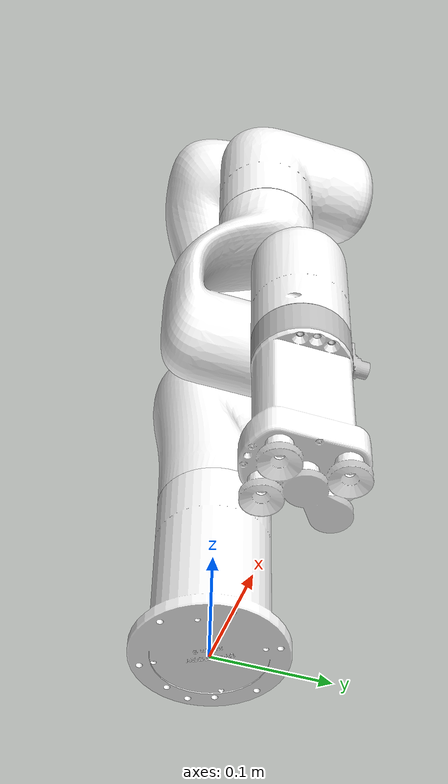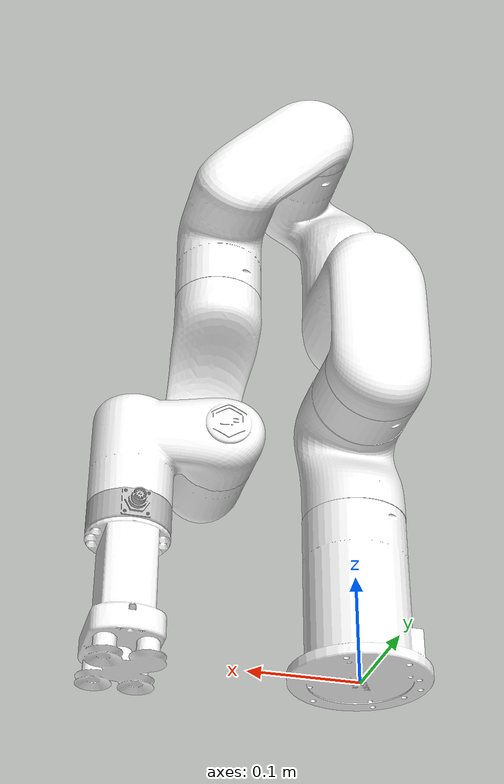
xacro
<?xml version='1.0' encoding='utf-8'?>
<robot xmlns:xacro="http://ros.org/wiki/xacro" name="xarm6">
  <xacro:arg name="prefix" default=""/>
  <xacro:arg name="ros_namespace" default="xarm"/>
  <xacro:arg name="limited" default="false"/>
  <xacro:arg name="effort_control" default="false"/>
  <xacro:arg name="velocity_control" default="false"/>
  <!-- To add realsense d435i and vacuum gripper, set 'add_realsense_d435i' = true -->
  <xacro:arg name="add_realsense_d435i" default="false"/>
  <xacro:arg name="model1300" default="false"/>

  <!-- load xarm6 robot -->
  <xacro:include filename="$(find xarm_description)/urdf/xarm6_robot_macro.xacro" />

  <!-- Attach gripper -->
  <xacro:include filename="$(find xarm_description)/urdf/xarm_vacuum_gripper.urdf.xacro" />

  <xacro:xarm6_robot prefix="$(arg prefix)" namespace="$(arg ros_namespace)" limited="$(arg limited)" effort_control="$(arg effort_control)" velocity_control="$(arg velocity_control)" rs_d435i="$(arg add_realsense_d435i)" model1300="$(arg model1300)" />

  <xacro:if value="$(arg add_realsense_d435i)">
    <xacro:xarm_vacuum_gripper_urdf attach_to="$(arg prefix)link_eef" xyz="0 0 0.003" effort_control="$(arg effort_control)" velocity_control="$(arg velocity_control)" />
  </xacro:if>
  <xacro:unless value="$(arg add_realsense_d435i)">
    <xacro:xarm_vacuum_gripper_urdf attach_to="$(arg prefix)link_eef" effort_control="$(arg effort_control)" velocity_control="$(arg velocity_control)" />
  </xacro:unless>
</robot>

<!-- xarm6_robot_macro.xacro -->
<robot xmlns:xacro="http://ros.org/wiki/xacro" name="xarm6" >
  <xacro:macro name="xarm6_robot" params="prefix:='' namespace:='xarm' limited:='false' effort_control:='false'
    velocity_control:='false' attach_to:='world' xyz:='0 0 0' rpy:='0 0 0' load_gazebo_plugin:='true' rs_d435i:='false'
    model1300:='false'
    add_other_geometry:='false'
    geometry_type:='box' geometry_mass:='0.1'
    geometry_radius:='0.1' geometry_height:='0.1'
    geometry_length:='0.1' geometry_width:='0.1'
    geometry_mesh_filename:=''
    geometry_mesh_origin_xyz:='0 0 0'
    geometry_mesh_origin_rpy:='0 0 0'
    geometry_mesh_tcp_xyz:='0 0 0'
    geometry_mesh_tcp_rpy:='0 0 0' ">

    <!-- include xarm6 relative macros: -->
    <xacro:include filename="$(find xarm_description)/urdf/xarm6.urdf.xacro" />
    <xacro:include filename="$(find xarm_description)/urdf/xarm6.transmission.xacro" />
    <xacro:include filename="$(find xarm_description)/urdf/xarm6.gazebo.xacro" />

    <!-- gazebo_plugin -->
    <xacro:if value="${load_gazebo_plugin}">
    <xacro:include filename="$(find xarm_description)/urdf/common.gazebo.xacro" />
    <xacro:gazebo_ros_control_plugin namespace="${namespace}"/>
    </xacro:if>

    <!-- add one world link if no 'attach_to' specified  -->
    <xacro:if value="${attach_to == 'world'}">
      <link name="world" />
    </xacro:if>

    <joint name="${prefix}world_joint" type="fixed">
      <parent link="${attach_to}" />
      <child link = "${prefix}link_base" />
      <origin xyz="${xyz}" rpy="${rpy}" />
    </joint>

    <xacro:if value="${limited}">
      <xacro:xarm6_urdf prefix="${prefix}"
        joint1_lower_limit="${-pi*0.99}" joint1_upper_limit="${pi*0.99}"
        joint2_lower_limit="${-2.059}" joint2_upper_limit="${2.0944}"
        joint3_lower_limit="${-pi*0.99}" joint3_upper_limit="${0.19198}"
        joint4_lower_limit="${-pi*0.99}" joint4_upper_limit="${pi*0.99}"
        joint5_lower_limit="${-1.69297}" joint5_upper_limit="${pi*0.99}"
        joint6_lower_limit="${-pi*0.99}" joint6_upper_limit="${pi*0.99}"
        rs_d435i="${rs_d435i}" model1300="${model1300}"/>
    </xacro:if>
    <xacro:unless value="${limited}">
      <xacro:xarm6_urdf prefix="${prefix}" rs_d435i="${rs_d435i}" model1300="${model1300}"/>
    </xacro:unless>

    <xacro:xarm6_transmission prefix="${prefix}" hard_interface="$(eval 'EffortJointInterface' if ${effort_control} else 'VelocityJointInterface' if ${velocity_control} else 'PositionJointInterface')" />

    <xacro:xarm6_gazebo prefix="${prefix}" />

    <xacro:if value="${add_other_geometry}">
      <xacro:include filename="$(find xarm_description)/urdf/other_geometry.urdf.xacro" />
      <xacro:other_geometry prefix="${prefix}" attach_to="${prefix}link_eef"
        geometry_type="${geometry_type}" geometry_mass="${geometry_mass}"
        geometry_height="${geometry_height}" geometry_radius="${geometry_radius}"
        geometry_length="${geometry_length}" geometry_width="${geometry_width}"
        geometry_mesh_filename="${geometry_mesh_filename}"
        geometry_mesh_origin_xyz="${geometry_mesh_origin_xyz}" geometry_mesh_origin_rpy="${geometry_mesh_origin_rpy}"
        geometry_mesh_tcp_xyz="${geometry_mesh_tcp_xyz}" geometry_mesh_tcp_rpy="${geometry_mesh_tcp_rpy}"
      />
    </xacro:if>

  </xacro:macro>

</robot>

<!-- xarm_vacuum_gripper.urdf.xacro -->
<robot xmlns:xacro="http://ros.org/wiki/xacro" name="xarm_vacuum_gripper">
  <xacro:macro name="xarm_vacuum_gripper_urdf" params="prefix:='' attach_to:='' rpy:='0 0 0' xyz:='0 0 0' ">
  <xacro:unless value="${attach_to == ''}">
    <joint name="${prefix}vacuum_gripper_fix" type="fixed">
      <parent link="${attach_to}"/>
      <child link="${prefix}xarm_vacuum_gripper_link"/>
      <origin xyz="${xyz}" rpy="${rpy}"/>
    </joint>
  </xacro:unless>
  <link
    name="${prefix}xarm_vacuum_gripper_link">
    <inertial>
      <origin
        xyz="0.0 0.0 0.055"
        rpy="0 0 0" />
      <mass
        value="0.656" />
      <inertia
        ixx="0.00047106"
        ixy="3.9292E-07"
        ixz="2.6537E-06"
        iyy="0.00033072"
        iyz="-1.0975E-05"
        izz="0.00025642" />
    </inertial>
    <visual>
      <origin
        xyz="0 0 0"
        rpy="0 0 0" />
      <geometry>
        <mesh
          filename="package://xarm_description/meshes/vacuum_gripper/visual/vacuum_gripper.STL" />
      </geometry>
      <material name="White">
        <color rgba="1.0 1.0 1.0 1.0"/>
      </material>
    </visual>
    <collision>
      <origin
        xyz="0 0 0"
        rpy="0 0 0" />
      <geometry>
        <mesh
          filename="package://xarm_description/meshes/vacuum_gripper/collision/vacuum_gripper.STL" />
      </geometry>
    </collision>
  </link>

  <link name="${prefix}link_tcp" />

  <joint
    name="${prefix}joint_tcp"
    type="fixed">
    <origin
      xyz="0 0 0.126"
      rpy="0 0 0" />
    <parent
      link="${prefix}xarm_vacuum_gripper_link" />
    <child
      link="${prefix}link_tcp" />
  </joint>

  </xacro:macro>

</robot>

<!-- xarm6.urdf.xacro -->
<robot xmlns:xacro="http://ros.org/wiki/xacro">

  <xacro:macro name="xarm6_urdf" params="prefix
    joint1_lower_limit:=${-2.0*pi}  joint1_upper_limit:=${2.0*pi}
    joint2_lower_limit:=${-2.059}  joint2_upper_limit:=${2.0944}
    joint3_lower_limit:=${-3.927}  joint3_upper_limit:=${0.19198}
    joint4_lower_limit:=${-2.0*pi}  joint4_upper_limit:=${2.0*pi}
    joint5_lower_limit:=${-1.69297}  joint5_upper_limit:=${pi}
    joint6_lower_limit:=${-2.0*pi}  joint6_upper_limit:=${2.0*pi}
    rs_d435i:=false  model1300:=false">

    <material name="${prefix}Black">
      <color rgba="0.0 0.0 0.0 1.0"/>
    </material>

    <material name="${prefix}Red">
      <color rgba="0.8 0.0 0.0 1.0"/>
    </material>

    <material name="${prefix}White">
      <color rgba="1.0 1.0 1.0 1.0"/>
    </material>

    <material name="${prefix}Silver">
      <color rgba="0.753 0.753 0.753 1.0"/>
    </material>

    <link name="${prefix}link_base">
      <visual>
        <geometry>
          <mesh filename="package://xarm_description/meshes/xarm6/visual/base.stl"/>
        </geometry>
        <origin xyz="0 0 0" rpy="0 0 0"/>
        <material name="${prefix}White" />
      </visual>
      <collision>
        <geometry>
          <mesh filename="package://xarm_description/meshes/xarm6/visual/base.stl"/>
        </geometry>
        <origin xyz="0 0 0" rpy="0 0 0"/>
      </collision>
      <inertial>
      <origin xyz="0.0 0.0 0.09103" rpy="0 0 0" />
      <mass value="2.7" />
      <inertia
        ixx="0.00494875"
        ixy="-3.5E-06"
        ixz="1.25E-05"
        iyy="0.00494174"
        iyz="1.67E-06"
        izz="0.002219" />
      </inertial>
    </link>

    <link name="${prefix}link1">
      <visual>
        <geometry>
          <mesh filename="package://xarm_description/meshes/xarm6/visual/link1.stl"/>
        </geometry>
        <origin xyz="0 0 0" rpy="0 0 0"/>
        <material name="${prefix}White" />
      </visual>
      <collision>
        <geometry>
          <mesh filename="package://xarm_description/meshes/xarm6/visual/link1.stl"/>
        </geometry>
        <origin xyz="0 0 0" rpy="0 0 0"/>
      </collision>
      <inertial>
        <origin xyz="-0.002 0.02692 -0.01332" rpy="0 0 0"/>
        <mass value="2.16"/>
        <inertia
          ixx="0.00539427"
          ixy="1.095E-05"
          ixz="1.635E-06"
          iyy="0.0048979"
          iyz="0.000793"
          izz="0.00311573"/>
      </inertial>
    </link>

    <joint name="${prefix}joint1" type="revolute">
      <parent link="${prefix}link_base"/>
      <child  link="${prefix}link1"/>
      <origin xyz="0 0 0.267" rpy="0 0 0"/>
      <axis   xyz="0 0 1"/>
      <limit
        lower="${joint1_lower_limit}"
        upper="${joint1_upper_limit}"
        effort="50.0"
        velocity="3.14"/>
      <dynamics damping="1.0" friction="1.0"/>
    </joint>

    <link name="${prefix}link2">
      <visual>
        <geometry>
          <mesh filename="package://xarm_description/meshes/xarm6/visual/link2.stl"/>
        </geometry>
        <origin xyz="0 0 0" rpy="0 0 0"/>
        <material name="${prefix}White" />
      </visual>
      <collision>
        <geometry>
          <mesh filename="package://xarm_description/meshes/xarm6/visual/link2.stl"/>
        </geometry>
        <origin xyz="0 0 0" rpy="0 0 0"/>
      </collision>
      <inertial>
      <origin
        xyz="0.03531 -0.21398 0.03386"
        rpy="0 0 0" />
      <mass
        value="1.71" />
      <inertia
        ixx="0.0248674"
        ixy="-0.00430651"
        ixz="-0.00067797"
        iyy="0.00485548"
        iyz="0.00457245"
        izz="0.02387827" />
    </inertial>
    </link>

    <joint name="${prefix}joint2" type="revolute">
      <parent link="${prefix}link1"/>
      <child link="${prefix}link2"/>
      <origin xyz="0 0 0" rpy="-1.5708 0 0" />
      <axis xyz="0 0 1"/>
      <limit
        lower="${joint2_lower_limit}"
        upper="${joint2_upper_limit}"
        effort="50.0"
        velocity="3.14"/>
      <dynamics damping="1.0" friction="1.0"/>
    </joint>

    <link name="${prefix}link3">
      <visual>
        <geometry>
          <mesh filename="package://xarm_description/meshes/xarm6/visual/link3.stl"/>
        </geometry>
        <origin xyz="0 0 0" rpy="0 0 0"/>
        <material name="${prefix}White" />
      </visual>
      <collision>
        <geometry>
          <mesh filename="package://xarm_description/meshes/xarm6/visual/link3.stl"/>
        </geometry>
        <origin xyz="0 0 0" rpy="0 0 0"/>
      </collision>
      <inertial>
      <origin
        xyz="0.06781 0.10749 0.01457"
        rpy="0 0 0" />
      <mass
        value="1.384" />
      <inertia
        ixx="0.0053694"
        ixy="0.0014185"
        ixz="-0.00092094"
        iyy="0.0032423"
        iyz="-0.00169178"
        izz="0.00501731" />
    </inertial>
    </link>

    <joint name="${prefix}joint3" type="revolute">
      <parent link="${prefix}link2"/>
      <child link="${prefix}link3"/>
      <origin xyz="0.0535 -0.2845 0" rpy="0 0 0"/>
      <axis xyz="0 0 1"/>
      <limit
        lower="${joint3_lower_limit}"
        upper="${joint3_upper_limit}"
        effort="32.0"
        velocity="3.14"/>
      <dynamics damping="1.0" friction="1.0"/>
    </joint>

    <link name="${prefix}link4">
      <visual>
        <geometry>
          <mesh filename="package://xarm_description/meshes/xarm6/visual/link4.stl"/>
        </geometry>
        <origin xyz="0 0 0" rpy="0 0 0"/>
        <material name="${prefix}White" />
      </visual>
      <collision>
        <geometry>
          <mesh filename="package://xarm_description/meshes/xarm6/visual/link4.stl"/>
        </geometry>
        <origin xyz="0 0 0" rpy="0 0 0"/>
      </collision>
      <inertial>
        <origin xyz="-0.00021 0.02578 -0.02538" rpy="0 0 0"/>
        <mass value="1.115"/>
        <inertia
          ixx="0.00439263"
          ixy="5.028E-05"
          ixz="1.374E-05"
          iyy="0.0040077"
          iyz="0.00045338"
          izz="0.00110321"/>
      </inertial>
    </link>

    <joint name="${prefix}joint4" type="revolute">
      <parent link="${prefix}link3"/>
      <child link="${prefix}link4"/>
      <origin xyz="0.0775 0.3425 0" rpy="-1.5708 0 0"/>
      <axis xyz="0 0 1"/>
      <limit
        lower="${joint4_lower_limit}"
        upper="${joint4_upper_limit}"
        effort="32.0"
        velocity="3.14"/>
      <dynamics damping="1.0" friction="1.0"/>
    </joint>

    <link name="${prefix}link5">
      <visual>
        <geometry>
          <mesh filename="package://xarm_description/meshes/xarm6/visual/link5.stl"/>
        </geometry>
        <origin xyz="0 0 0" rpy="0 0 0"/>
        <material name="${prefix}White" />
      </visual>
      <collision>
        <geometry>
          <mesh filename="package://xarm_description/meshes/xarm6/visual/link5.stl"/>
        </geometry>
        <origin xyz="0 0 0" rpy="0 0 0"/>
      </collision>
      <inertial>
      <origin
        xyz="0.05428 0.01781 0.00543"
        rpy="0 0 0" />
      <mass
        value="1.275" />
      <inertia
        ixx="0.001202758"
        ixy="0.000492428"
        ixz="-0.00039147"
        iyy="0.0022876"
        iyz="-1.235E-04"
        izz="0.0026866" />
    </inertial>
    </link>

    <joint name="${prefix}joint5" type="revolute">
      <parent link="${prefix}link4"/>
      <child link="${prefix}link5"/>
      <origin xyz="0 0 0" rpy="1.5708 0 0"/>
      <axis xyz="0 0 1"/>
      <limit
        lower="${joint5_lower_limit}"
        upper="${joint5_upper_limit}"
        effort="32.0"
        velocity="3.14"/>
      <dynamics damping="1.0" friction="1.0"/>
    </joint>

    <link name="${prefix}link6">
      <visual>
        <geometry>
          <xacro:if value="${model1300}">
            <mesh filename="package://xarm_description/meshes/end_tool/visual/end_tool_1300.STL" />
          </xacro:if>
          <xacro:unless value="${model1300}">
            <mesh filename="package://xarm_description/meshes/xarm6/visual/link6.stl"/>
          </xacro:unless>
        </geometry>
        <origin xyz="0 0 0" rpy="0 0 0"/>
        <material name="${prefix}Silver" />
      </visual>
      <collision>
        <geometry>
          <xacro:if value="${model1300}">
            <mesh filename="package://xarm_description/meshes/end_tool/collision/end_tool_1300.STL" />
          </xacro:if>
          <xacro:unless value="${model1300}">
            <mesh filename="package://xarm_description/meshes/end_tool/collision/end_tool.STL"/>
          </xacro:unless>
        </geometry>
        <origin xyz="0 0 0" rpy="0 0 0"/>
      </collision>
      <inertial>
      <origin
        xyz="0 0.00064 -0.00952"
        rpy="0 0 0" />
      <mass
        value="0.1096" />
      <inertia
        ixx="4.5293E-05"
        ixy="0"
        ixz="0"
        iyy="4.8111E-05"
        iyz="0"
        izz="7.9715E-05" />
    </inertial>
    </link>

    <joint name="${prefix}joint6" type="revolute">
      <parent link="${prefix}link5"/>
      <child link="${prefix}link6"/>
      <origin xyz="0.076 0.097 0" rpy="-1.5708 0 0"/>
      <axis xyz="0 0 1"/>
      <limit
        lower="${joint6_lower_limit}"
        upper="${joint6_upper_limit}"
        effort="20.0"
        velocity="3.14"/>
      <dynamics damping="1.0" friction="1.0"/>
    </joint>

  <xacro:if value="${rs_d435i}">
    <link name="${prefix}link_eef">
      <visual>
        <origin
          xyz="0 0 0"
          rpy="0 0 0" />
        <geometry>
          <mesh
            filename="package://d435i_xarm_setup/mesh/d435_with_cam_stand.STL" />
        </geometry>
        <material name="Silver" />
      </visual>
      <collision>
        <origin
          xyz="0 0 0"
          rpy="0 0 0" />
        <geometry>
          <mesh
            filename="package://d435i_xarm_setup/mesh/d435_with_cam_stand_collision.STL" />
        </geometry>
      </collision>
    </link>
  </xacro:if>

  <xacro:unless value="${rs_d435i}">
    <link name="${prefix}link_eef"/>
  </xacro:unless>

  <joint
    name="${prefix}joint_eef"
    type="fixed">
    <origin
      xyz="0 0 0"
      rpy="0 0 0" />
    <parent
      link="${prefix}link6" />
    <child
      link="${prefix}link_eef" />
  </joint>

  </xacro:macro>
</robot>
